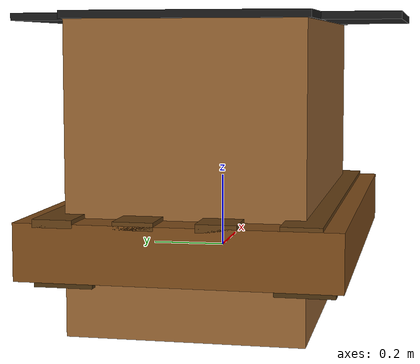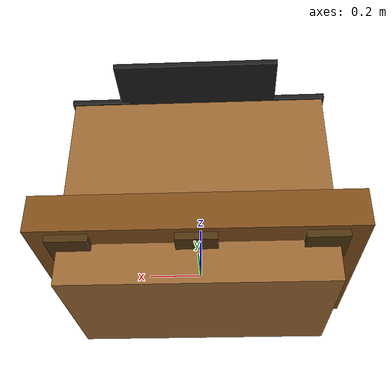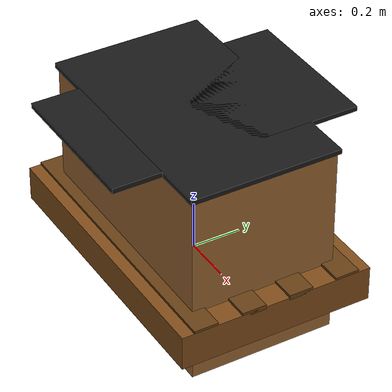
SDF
<?xml version='1.0'?>
<sdf version='1.6'>
  <model name='warehouse_pallet'>
    <static>false</static>

    <!-- Standard EUR pallet: 1.2m x 0.8m x 0.144m -->
    <link name='pallet'>
      <pose>0 0 0.072 0 0 0</pose>

      <inertial>
        <mass>25</mass>
        <inertia>
          <ixx>0.32</ixx>
          <iyy>0.65</iyy>
          <izz>0.96</izz>
          <ixy>0</ixy>
          <ixz>0</ixz>
          <iyz>0</iyz>
        </inertia>
      </inertial>

      <collision name='collision'>
        <geometry>
          <box>
            <size>1.2 0.8 0.144</size>
          </box>
        </geometry>
      </collision>

      <visual name='visual_base'>
        <geometry>
          <box>
            <size>1.2 0.8 0.144</size>
          </box>
        </geometry>
        <material>
          <ambient>0.5 0.3 0.1 1</ambient>
        </material>
      </visual>

      <!-- Pallet slats detail -->
      <visual name='slat_1'>
        <pose>0 -0.3 0.072 0 0 0</pose>
        <geometry>
          <box>
            <size>1.2 0.1 0.02</size>
          </box>
        </geometry>
        <material>
          <ambient>0.4 0.25 0.08 1</ambient>
        </material>
      </visual>

      <visual name='slat_2'>
        <pose>0 -0.1 0.072 0 0 0</pose>
        <geometry>
          <box>
            <size>1.2 0.1 0.02</size>
          </box>
        </geometry>
        <material>
          <ambient>0.4 0.25 0.08 1</ambient>
        </material>
      </visual>

      <visual name='slat_3'>
        <pose>0 0.1 0.072 0 0 0</pose>
        <geometry>
          <box>
            <size>1.2 0.1 0.02</size>
          </box>
        </geometry>
        <material>
          <ambient>0.4 0.25 0.08 1</ambient>
        </material>
      </visual>

      <visual name='slat_4'>
        <pose>0 0.3 0.072 0 0 0</pose>
        <geometry>
          <box>
            <size>1.2 0.1 0.02</size>
          </box>
        </geometry>
        <material>
          <ambient>0.4 0.25 0.08 1</ambient>
        </material>
      </visual>

      <!-- Pallet feet/blocks -->
      <visual name='foot_1'>
        <pose>-0.45 -0.3 -0.05 0 0 0</pose>
        <geometry>
          <box>
            <size>0.15 0.15 0.1</size>
          </box>
        </geometry>
        <material>
          <ambient>0.3 0.2 0.06 1</ambient>
        </material>
      </visual>

      <visual name='foot_2'>
        <pose>0 -0.3 -0.05 0 0 0</pose>
        <geometry>
          <box>
            <size>0.15 0.15 0.1</size>
          </box>
        </geometry>
        <material>
          <ambient>0.3 0.2 0.06 1</ambient>
        </material>
      </visual>

      <visual name='foot_3'>
        <pose>0.45 -0.3 -0.05 0 0 0</pose>
        <geometry>
          <box>
            <size>0.15 0.15 0.1</size>
          </box>
        </geometry>
        <material>
          <ambient>0.3 0.2 0.06 1</ambient>
        </material>
      </visual>

      <visual name='foot_4'>
        <pose>-0.45 0.3 -0.05 0 0 0</pose>
        <geometry>
          <box>
            <size>0.15 0.15 0.1</size>
          </box>
        </geometry>
        <material>
          <ambient>0.3 0.2 0.06 1</ambient>
        </material>
      </visual>

      <visual name='foot_5'>
        <pose>0 0.3 -0.05 0 0 0</pose>
        <geometry>
          <box>
            <size>0.15 0.15 0.1</size>
          </box>
        </geometry>
        <material>
          <ambient>0.3 0.2 0.06 1</ambient>
        </material>
      </visual>

      <visual name='foot_6'>
        <pose>0.45 0.3 -0.05 0 0 0</pose>
        <geometry>
          <box>
            <size>0.15 0.15 0.1</size>
          </box>
        </geometry>
        <material>
          <ambient>0.3 0.2 0.06 1</ambient>
        </material>
      </visual>
    </link>

    <!-- Optional: Add boxes/cargo on top of pallet -->
    <link name='cargo'>
      <pose>0 0 0.244 0 0 0</pose>

      <inertial>
        <mass>100</mass>
        <inertia>
          <ixx>5.83</ixx>
          <iyy>10.83</iyy>
          <izz>13.33</izz>
          <ixy>0</ixy>
          <ixz>0</ixz>
          <iyz>0</iyz>
        </inertia>
      </inertial>

      <collision name='collision'>
        <geometry>
          <box>
            <size>1.0 0.6 0.8</size>
          </box>
        </geometry>
      </collision>

      <visual name='visual'>
        <geometry>
          <box>
            <size>1.0 0.6 0.8</size>
          </box>
        </geometry>
        <material>
          <ambient>0.6 0.4 0.2 1</ambient>
        </material>
      </visual>

      <!-- Strapping/tape details -->
      <visual name='strap_horizontal'>
        <pose>0 0 0.4 0 0 0</pose>
        <geometry>
          <box>
            <size>1.02 0.62 0.02</size>
          </box>
        </geometry>
        <material>
          <ambient>0.1 0.1 0.1 1</ambient>
        </material>
      </visual>

      <visual name='strap_vertical'>
        <pose>0 0 0.4 0 0 1.5708</pose>
        <geometry>
          <box>
            <size>1.02 0.62 0.02</size>
          </box>
        </geometry>
        <material>
          <ambient>0.1 0.1 0.1 1</ambient>
        </material>
      </visual>
    </link>

    <joint name='cargo_joint' type='fixed'>
      <parent>pallet</parent>
      <child>cargo</child>
    </joint>
  </model>
</sdf>
